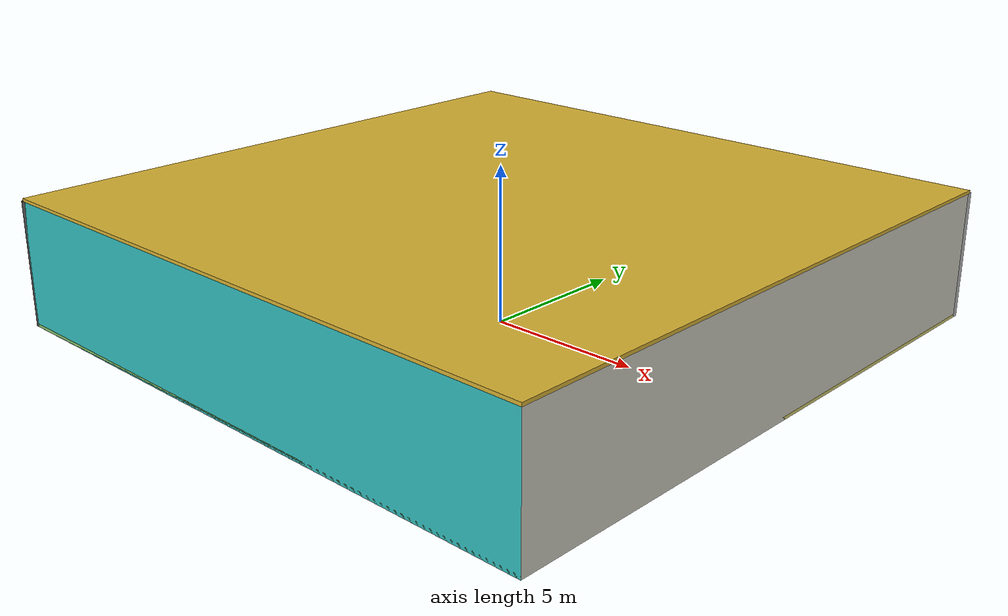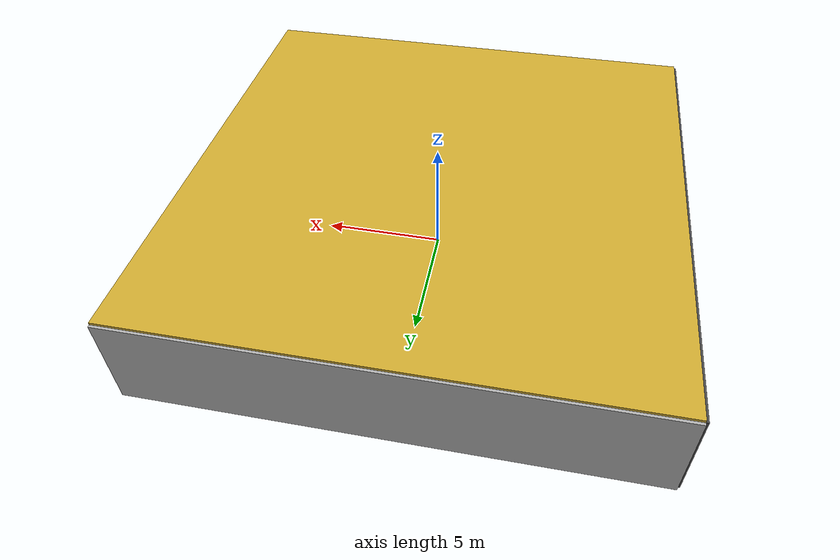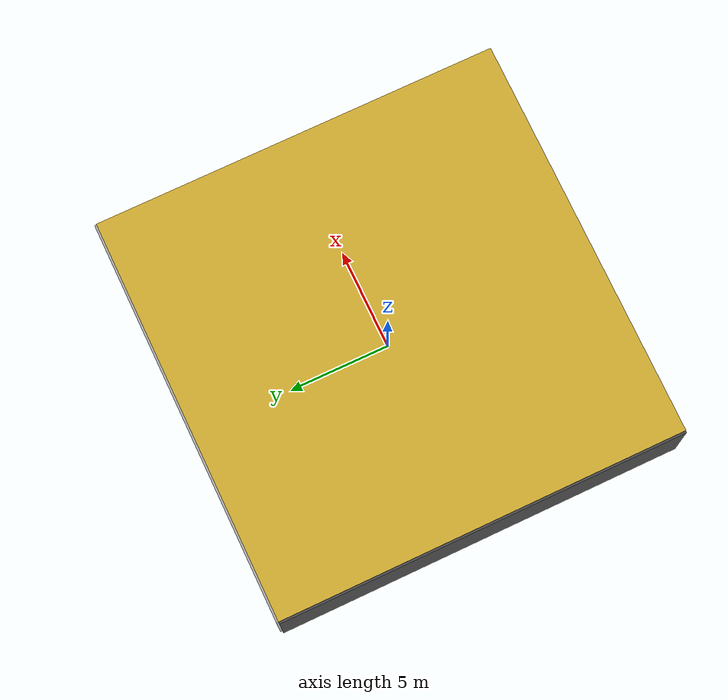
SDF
<sdf version="1.4">
 <world name="default">
  <physics type="ode">
   <max_step_size>0.001</max_step_size>
   <real_time_factor>1</real_time_factor>
   <real_time_update_rate>1000</real_time_update_rate>
   <gravity>0 0 -9.8</gravity>
  </physics>
  <scene><ambient>0.4 0.4 0.4 1</ambient><background>0.7 0.7 0.7 1</background><shadows>1</shadows></scene>
  <model name="Surrounding">
   <static>1</static>
   <link name="Ceiling">
    <collision name="Ceiling_Collision"><geometry><box><size>20 20 0.1</size></box></geometry></collision>
    <visual name="Ceiling_Visual">
     <geometry><box><size>20 20 0.1</size></box></geometry>
     <material>
      <script><uri>file://media/materials/scripts/gazebo.material</uri><name>Gazebo/Gold</name></script>
     </material>
    </visual>
    <pose>0 0 4.05 0 0 0</pose>
   </link>
   <link name="Wall_South">
    <collision name="Wall_South_Collision">
     <geometry><box><size>20 0 4</size></box></geometry>
     <pose>0 0 2 0 -0 0</pose>
    </collision>
    <visual name="Wall_South_Visual">
     <pose>0 0 2 0 -0 0</pose>
     <geometry><box><size>20 0 4</size></box></geometry>
     <material>
      <script>
       <uri>file://media/materials/scripts/gazebo.material</uri>
       <name>Gazebo/TurquoiseGlowOutline</name>
      </script>
     </material>
    </visual>
    <velocity_decay><linear>0</linear><angular>0</angular></velocity_decay>
    <pose>0 -10 0 0 -0 0</pose>
   </link>
   <link name="Wall_East">
    <collision name="Wall_21_Collision">
     <geometry><box><size>20 0 4</size></box></geometry>
     <pose>0 0 2 0 -0 0</pose>
    </collision>
    <visual name="Wall_21_Visual">
     <pose>0 0 2 0 -0 0</pose>
     <geometry><box><size>20 0 4</size></box></geometry>
     <material>
      <script><uri>file://media/materials/scripts/gazebo.material</uri><name>Gazebo/PaintedWall</name></script>
     </material>
    </visual>
    <velocity_decay><linear>0</linear><angular>0</angular></velocity_decay>
    <pose>10 0 0 0 -0 1.5708</pose>
   </link>
   <link name="Wall_North">
    <collision name="Wall_22_Collision">
     <geometry><box><size>20 0.2 4</size></box></geometry>
     <pose>0 0 2 0 -0 0</pose>
    </collision>
    <visual name="Wall_22_Visual">
     <pose>0 0 2 0 -0 0</pose>
     <geometry><box><size>20 0.2 4</size></box></geometry>
     <material>
      <script><uri>file://media/materials/scripts/gazebo.material</uri><name>Gazebo/Pioneer2Body</name></script>
     </material>
    </visual>
    <velocity_decay><linear>0</linear><angular>0</angular></velocity_decay>
    <pose>0 10 0 0 -0 0</pose>
   </link>
   <link name="Wall_West">
    <collision name="Wall_23_Collision">
     <geometry><box><size>20 0.2 4</size></box></geometry>
     <pose>0 0 2 0 -0 0</pose>
    </collision>
    <visual name="Wall_23_Visual">
     <pose>0 0 2 0 -0 0</pose>
     <geometry><box><size>20 0.2 4</size></box></geometry>
     <material>
      <script><uri>file://media/materials/scripts/gazebo.material</uri><name>Gazebo/Road</name></script>
     </material>
    </visual>
    <velocity_decay><linear>0</linear><angular>0</angular></velocity_decay>
    <pose>-10 0 0 0 0 -1.5708</pose>
   </link>
   <link name="Ground_link">
    <collision name="collision">
     <pose>0 0 .05 0 -0 0</pose>
     <geometry><box><size>20 20 0.1</size></box></geometry>
    </collision>
    <visual name="visual">
     <pose>0 0 .05 0 -0 0</pose>
     <geometry><box><size>20 20 0.1</size></box></geometry>
     <material>
      <script>
       <uri>file://media/materials/scripts/gazebo.material</uri>
       <name>Gazebo/YellowTransparent</name>
      </script>
     </material>
    </visual>
   </link>
   <static>1</static>
  </model>
  <spherical_coordinates>
   <surface_model>EARTH_WGS84</surface_model>
   <latitude_deg>0</latitude_deg>
   <longitude_deg>0</longitude_deg>
   <elevation>0</elevation>
   <heading_deg>0</heading_deg>
  </spherical_coordinates>
  <light name="lightball_0" type="diffuse">
   <diffuse>0.8 0.8 0.8 1</diffuse>
   <specular>0.2 0.2 0.2 1</specular>
   <attenuation>
    <range>100</range>
    <constant>0.7</constant>
    <linear>0.01</linear>
    <quadratic>0.001</quadratic>
   </attenuation>
   <direction>-0.5 0.1 -0.9</direction>
   <pose>-3.63973910534 -2.83543894933 3.52632167406 0 0 0</pose>
  </light>
  <light name="lightball_1" type="diffuse">
   <diffuse>0.8 0.8 0.8 1</diffuse>
   <specular>0.2 0.2 0.2 1</specular>
   <attenuation>
    <range>100</range>
    <constant>0.7</constant>
    <linear>0.01</linear>
    <quadratic>0.001</quadratic>
   </attenuation>
   <direction>-0.5 0.1 -0.9</direction>
   <pose>-3.83209020252 -9.12907542677 3.5418096449 0 0 0</pose>
  </light>
  <light name="lightball_2" type="diffuse">
   <diffuse>0.8 0.8 0.8 1</diffuse>
   <specular>0.2 0.2 0.2 1</specular>
   <attenuation>
    <range>100</range>
    <constant>0.7</constant>
    <linear>0.01</linear>
    <quadratic>0.001</quadratic>
   </attenuation>
   <direction>-0.5 0.1 -0.9</direction>
   <pose>3.74080127521 -2.80294199313 0.615619937048 0 0 0</pose>
  </light>
  <light name="lightball_3" type="diffuse">
   <diffuse>0.8 0.8 0.8 1</diffuse>
   <specular>0.2 0.2 0.2 1</specular>
   <attenuation>
    <range>100</range>
    <constant>0.7</constant>
    <linear>0.01</linear>
    <quadratic>0.001</quadratic>
   </attenuation>
   <direction>-0.5 0.1 -0.9</direction>
   <pose>6.6093424216 -9.95029756585 3.41904364885 0 0 0</pose>
  </light>
  <include><uri>model://cabinet</uri><pose>-8.56180984361 1.14183998049 0 0 0 0.368069518021</pose></include>
  <include><uri>model://table</uri><pose>-8.65634929247 5.40923916755 0 0 0 0.547489156293</pose></include>
  <include>
   <uri>model://robocup_3Dsim_goal</uri>
   <pose>-6.84163142484 7.55507264241 0 0 0 1.94409699308</pose>
  </include>
  <include><uri>model://cabinet</uri><pose>3.71490099197 -3.3025225336 0 0 0 2.20843033125</pose></include>
  <include><uri>model://cabinet</uri><pose>3.52031370447 -0.829733778325 0 0 0 2.18030621971</pose></include>
  <include><uri>model://cabinet</uri><pose>6.63844891324 5.22848024789 0 0 0 1.63818392599</pose></include>
 </world>
</sdf>

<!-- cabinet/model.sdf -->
<sdf version="1.5">
  <model name="cabinet">
    <static>true</static>
    <link name="cabinet_bottom_plate">
      <inertial>
        <pose>0 0 -1 0 0 0</pose>
        <inertia>
          <ixx>2.050000</ixx>
          <ixy>0</ixy>
          <ixz>0</ixz>
          <iyy>2.050000</iyy>
          <iyz>0</iyz>
          <izz>2.050000</izz>
        </inertia>
        <mass>25.000000</mass>
      </inertial>
      <collision name="cabinet_bottom_plate_geom">
        <pose>0 0 0.010000 0 0 0</pose>
        <geometry>
          <box>
            <size>0.450000 0.450000 0.020000</size>
          </box>
        </geometry>
      </collision>
      <visual name="cabinet_bottom_plate_geom_visual">
        <pose>0 0 0.010000 0 0 0</pose>
        <geometry>
          <box>
            <size>0.450000 0.450000 0.020000</size>
          </box>
        </geometry>
        <material>
          <script>
            <uri>model://media/materials/scripts/gazebo.material</uri>
            <name>Gazebo/Wood</name>
          </script>
        </material>
      </visual>
      <collision name="cabinet_bottom_plate_geom_cabinet_back_plate">
        <pose>0.235000 0 0.510000 0 0 0</pose>
        <geometry>
          <box>
            <size>0.020000 0.450000 1.020000</size>
          </box>
        </geometry>
      </collision>
      <visual name="cabinet_bottom_plate_geom_cabinet_back_plate_visual">
        <pose>0.235000 0 0.510000 0 0 0</pose>
        <geometry>
          <box>
            <size>0.020000 0.450000 1.020000</size>
          </box>
        </geometry>
        <material>
          <script>
            <uri>model://media/materials/scripts/gazebo.material</uri>
            <name>Gazebo/Wood</name>
          </script>
        </material>
      </visual>
      <collision name="cabinet_bottom_plate_geom_cabinet_left_plate">
        <pose>0 0.235000 0.510000 0 0 0</pose>
        <geometry>
          <box>
            <size>0.450000 0.020000 1.020000</size>
          </box>
        </geometry>
      </collision>
      <visual name="cabinet_bottom_plate_geom_cabinet_left_plate_visual">
        <pose>0 0.235000 0.510000 0 0 0</pose>
        <geometry>
          <box>
            <size>0.450000 0.020000 1.020000</size>
          </box>
        </geometry>
        <material>
          <script>
            <uri>model://media/materials/scripts/gazebo.material</uri>
            <name>Gazebo/Wood</name>
          </script>
        </material>
      </visual>
      <collision name="cabinet_bottom_plate_geom_cabinet_middle_plate">
        <pose>0 0 0.510000 0 0 0</pose>
        <geometry>
          <box>
            <size>0.450000 0.450000 0.020000</size>
          </box>
        </geometry>
      </collision>
      <visual name="cabinet_bottom_plate_geom_cabinet_middle_plate_visual">
        <pose>0 0 0.510000 0 0 0</pose>
        <geometry>
          <box>
            <size>0.450000 0.450000 0.020000</size>
          </box>
        </geometry>
        <material>
          <script>
            <uri>model://media/materials/scripts/gazebo.material</uri>
            <name>Gazebo/Wood</name>
          </script>
        </material>
      </visual>
      <collision name="cabinet_bottom_plate_geom_cabinet_right_plate">
        <pose>0 -0.235000 0.510000 0 0 0</pose>
        <geometry>
          <box>
            <size>0.450000 0.020000 1.020000</size>
          </box>
        </geometry>
      </collision>
      <visual name="cabinet_bottom_plate_geom_cabinet_right_plate_visual">
        <pose>0 -0.235000 0.510000 0 0 0</pose>
        <geometry>
          <box>
            <size>0.450000 0.020000 1.020000</size>
          </box>
        </geometry>
        <material>
          <script>
            <uri>model://media/materials/scripts/gazebo.material</uri>
            <name>Gazebo/Wood</name>
          </script>
        </material>
      </visual>
      <collision name="cabinet_bottom_plate_geom_cabinet_top_plate">
        <pose>0 0 1.010000 0 0 0</pose>
        <geometry>
          <box>
            <size>0.450000 0.450000 0.020000</size>
          </box>
        </geometry>
      </collision>
      <visual name="cabinet_bottom_plate_geom_cabinet_top_plate_visual">
        <pose>0 0 1.010000 0 0 0</pose>
        <geometry>
          <box>
            <size>0.450000 0.450000 0.020000</size>
          </box>
        </geometry>
        <material>
          <script>
            <uri>model://media/materials/scripts/gazebo.material</uri>
            <name>Gazebo/Wood</name>
          </script>
        </material>
      </visual>
    </link>
  </model>
</sdf>

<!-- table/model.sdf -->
<sdf version="1.5">
  <model name="table">
    <static>true</static>
    <link name="link">
      <collision name="surface">
        <pose>0 0 1.0 0 0 0</pose>
        <geometry>
          <box>
            <size>1.5 0.8 0.03</size>
          </box>
        </geometry>
        <surface>
          <friction>
            <ode>
              <mu>0.6</mu>
              <mu2>0.6</mu2>
            </ode>
          </friction>
        </surface>
      </collision>
      <visual name="visual1">
        <pose>0 0 1.0 0 0 0</pose>
        <geometry>
          <box>
            <size>1.5 0.8 0.03</size>
          </box>
        </geometry>
        <material>
          <script>
            <uri>model://media/materials/scripts/gazebo.material</uri>
            <name>Gazebo/Wood</name>
          </script>
        </material>
      </visual>
      <collision name="front_left_leg">
        <pose>0.68 0.38 0.5 0 0 0</pose>
        <geometry>
          <cylinder>
            <radius>0.02</radius>
            <length>1.0</length>
          </cylinder>
        </geometry>
      </collision>
      <visual name="front_left_leg">
        <pose>0.68 0.38 0.5 0 0 0</pose>
        <geometry>
          <cylinder>
            <radius>0.02</radius>
            <length>1.0</length>
          </cylinder>
        </geometry>
        <material>
          <script>
            <uri>model://media/materials/scripts/gazebo.material</uri>
            <name>Gazebo/Grey</name>
          </script>
        </material>
      </visual>
      <collision name="front_right_leg">
        <pose>0.68 -0.38 0.5 0 0 0</pose>
        <geometry>
          <cylinder>
            <radius>0.02</radius>
            <length>1.0</length>
          </cylinder>
        </geometry>
      </collision>
      <visual name="front_right_leg">
        <pose>0.68 -0.38 0.5 0 0 0</pose>
        <geometry>
          <cylinder>
            <radius>0.02</radius>
            <length>1.0</length>
          </cylinder>
        </geometry>
        <material>
          <script>
            <uri>model://media/materials/scripts/gazebo.material</uri>
            <name>Gazebo/Grey</name>
          </script>
        </material>
      </visual>
      <collision name="back_right_leg">
        <pose>-0.68 -0.38 0.5 0 0 0</pose>
        <geometry>
          <cylinder>
            <radius>0.02</radius>
            <length>1.0</length>
          </cylinder>
        </geometry>
      </collision>
      <visual name="back_right_leg">
        <pose>-0.68 -0.38 0.5 0 0 0</pose>
        <geometry>
          <cylinder>
            <radius>0.02</radius>
            <length>1.0</length>
          </cylinder>
        </geometry>
        <material>
          <script>
            <uri>model://media/materials/scripts/gazebo.material</uri>
            <name>Gazebo/Grey</name>
          </script>
        </material>
      </visual>
      <collision name="back_left_leg">
        <pose>-0.68 0.38 0.5 0 0 0</pose>
        <geometry>
          <cylinder>
            <radius>0.02</radius>
            <length>1.0</length>
          </cylinder>
        </geometry>
      </collision>
      <visual name="back_left_leg">
        <pose>-0.68 0.38 0.5 0 0 0</pose>
        <geometry>
          <cylinder>
            <radius>0.02</radius>
            <length>1.0</length>
          </cylinder>
        </geometry>
        <material>
          <script>
            <uri>model://media/materials/scripts/gazebo.material</uri>
            <name>Gazebo/Grey</name>
          </script>
        </material>
      </visual>
    </link>
  </model>
</sdf>

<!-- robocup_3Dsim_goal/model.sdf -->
<sdf version="1.5">
  <model name="robocup_3d_goal">
    <static>true</static>
    <link name="left_post">
      <pose>0 1.05 0.45 0 0 0</pose>
      <collision name="collision">
        <geometry>
          <cylinder>
            <radius>0.05</radius>
            <length>0.9</length>
          </cylinder>
        </geometry>
      </collision>
      <visual name="visual">
        <geometry>
          <cylinder>
            <radius>0.05</radius>
            <length>0.9</length>
          </cylinder>
        </geometry>
        <material>
          <script>
            <uri>file://media/materials/scripts/gazebo.material</uri>
            <name>Gazebo/ZincYellow</name>
          </script>
        </material>
      </visual>
    </link>
    <link name="left_support_horiz_lower">
      <pose>0.30 1.05 0.01 0 0 0</pose>
      <collision name="collision">
        <geometry>
          <box>
            <size>0.50 0.02 0.02</size>
          </box>
        </geometry>
      </collision>
      <visual name="visual">
        <geometry>
          <box>
            <size>0.50 0.02 0.02</size>
          </box>
        </geometry>
        <material>
          <script>
            <uri>file://media/materials/scripts/gazebo.material</uri>
            <name>Gazebo/White</name>
          </script>
        </material>
      </visual>
    </link>
    <link name="left_support_horiz_upper">
      <pose>0.30 1.05 0.79 0 0 0</pose>
      <collision name="collision">
        <geometry>
          <box>
            <size>0.50 0.02 0.02</size>
          </box>
        </geometry>
      </collision>
      <visual name="visual">
        <geometry>
          <box>
            <size>0.50 0.02 0.02</size>
          </box>
        </geometry>
        <material>
          <script>
            <uri>file://media/materials/scripts/gazebo.material</uri>
            <name>Gazebo/White</name>
          </script>
        </material>
      </visual>
    </link>
    <link name="left_support_vertical">
      <pose>0.56 1.05 0.4 0 1.5708 0</pose>
      <collision name="collision">
        <geometry>
          <box>
            <size>0.80 0.02 0.02</size>
          </box>
        </geometry>
      </collision>
      <visual name="visual">
        <geometry>
          <box>
            <size>0.80 0.02 0.02</size>
          </box>
        </geometry>
        <material>
          <script>
            <uri>file://media/materials/scripts/gazebo.material</uri>
            <name>Gazebo/White</name>
          </script>
        </material>
      </visual>
    </link>
    <link name="right_support_horiz_lower">
      <pose>0.30 -1.05 0.01 0 0 0</pose>
      <collision name="collision">
        <geometry>
          <box>
            <size>0.50 0.02 0.02</size>
          </box>
        </geometry>
      </collision>
      <visual name="visual">
        <geometry>
          <box>
            <size>0.50 0.02 0.02</size>
          </box>
        </geometry>
        <material>
          <script>
            <uri>file://media/materials/scripts/gazebo.material</uri>
            <name>Gazebo/White</name>
          </script>
        </material>
      </visual>
    </link>
    <link name="right_support_horiz_upper">
      <pose>0.30 -1.05 0.79 0 0 0</pose>
      <collision name="collision">
        <geometry>
          <box>
            <size>0.50 0.02 0.02</size>
          </box>
        </geometry>
      </collision>
      <visual name="visual">
        <geometry>
          <box>
            <size>0.50 0.02 0.02</size>
          </box>
        </geometry>
        <material>
          <script>
            <uri>file://media/materials/scripts/gazebo.material</uri>
            <name>Gazebo/White</name>
          </script>
        </material>
      </visual>
    </link>
    <link name="right_support_vertical">
      <pose>0.56 -1.05 0.4 0 1.5708 0</pose>
      <collision name="collision">
        <geometry>
          <box>
            <size>0.80 0.02 0.02</size>
          </box>
        </geometry>
      </collision>
      <visual name="visual">
        <geometry>
          <box>
            <size>0.80 0.02 0.02</size>
          </box>
        </geometry>
        <material>
          <script>
            <uri>file://media/materials/scripts/gazebo.material</uri>
            <name>Gazebo/White</name>
          </script>
        </material>
      </visual>
    </link>
    <link name="center_support_horiz_lower">
      <pose>0.56 0 0.01 0 1.5708 0</pose>
      <collision name="collision">
        <geometry>
          <box>
            <size>0.02 2.08 0.02</size>
          </box>
        </geometry>
      </collision>
      <visual name="visual">
        <geometry>
          <box>
            <size>0.02 2.08 0.02</size>
          </box>
        </geometry>
        <material>
          <script>
            <uri>file://media/materials/scripts/gazebo.material</uri>
            <name>Gazebo/White</name>
          </script>
        </material>
      </visual>
    </link>
    <link name="center_support_horiz_upper">
      <pose>0.56 0 0.79 0 1.5708 0</pose>
      <collision name="collision">
        <geometry>
          <box>
            <size>0.02 2.08 0.02</size>
          </box>
        </geometry>
      </collision>
      <visual name="visual">
        <geometry>
          <box>
            <size>0.02 2.08 0.02</size>
          </box>
        </geometry>
        <material>
          <script>
            <uri>file://media/materials/scripts/gazebo.material</uri>
            <name>Gazebo/White</name>
          </script>
        </material>
      </visual>
    </link>
    <link name="right_post">
      <pose>0 -1.05 0.45 0 0 0</pose>
      <collision name="collision">
        <geometry>
          <cylinder>
            <radius>0.05</radius>
            <length>0.9</length>
          </cylinder>
        </geometry>
      </collision>
      <visual name="visual">
        <geometry>
          <cylinder>
            <radius>0.05</radius>
            <length>0.9</length>
          </cylinder>
        </geometry>
        <material>
          <script>
            <uri>file://media/materials/scripts/gazebo.material</uri>
            <name>Gazebo/ZincYellow</name>
          </script>
        </material>
      </visual>
    </link>
    <link name="crossbar">
      <pose>0 0 0.85 1.57 1.57 0</pose>
      <collision name="collision">
        <geometry>
          <cylinder>
            <radius>0.05</radius>
            <length>2.0</length>
          </cylinder>
        </geometry>
      </collision>
      <visual name="visual">
        <geometry>
          <cylinder>
            <radius>0.05</radius>
            <length>2.0</length>
          </cylinder>
        </geometry>
        <material>
          <script>
            <uri>file://media/materials/scripts/gazebo.material</uri>
            <name>Gazebo/ZincYellow</name>
          </script>
        </material>
      </visual>
    </link>
    <link name="center_net">
      <pose>0.56 0 0.40 0 0 0</pose>
      <collision name="collision">
        <geometry>
          <box>
            <size>0.01 2.1 0.80</size>
          </box>
        </geometry>
      </collision>
      <visual name="visual">
        <geometry>
          <box>
            <size>0.01 2.1 0.80</size>
          </box>
        </geometry>
        <material>
          <script>
            <uri>model://../model_source/models/robocup09_spl_field/materials/scripts/</uri>
            <uri>model://../model_source/models/robocup09_spl_field/materials/textures/</uri>
            <name>RoboCup/Net</name>
          </script>
        </material>
      </visual>
    </link>
    <link name="left_net">
      <pose>0.30 1.05 0.40 0 0 0</pose>
      <collision name="collision">
        <geometry>
          <box>
            <size>0.50 0.01 0.76</size>
          </box>
        </geometry>
      </collision>
      <visual name="visual">
        <geometry>
          <box>
            <size>0.50 0.01 0.76</size>
          </box>
        </geometry>
        <material>
          <script>
            <uri>model://../model_source/models/robocup09_spl_field/materials/scripts/</uri>
            <uri>model://../model_source/models/robocup09_spl_field/materials/textures/</uri>
            <name>RoboCup/Net</name>
          </script>
        </material>
      </visual>
    </link>
    <link name="right_net">
      <pose>0.30 -1.05 0.40 0 0 0</pose>
      <collision name="collision">
        <geometry>
          <box>
            <size>0.50 0.01 0.76</size>
          </box>
        </geometry>
      </collision>
      <visual name="visual">
        <geometry>
          <box>
            <size>0.50 0.01 0.76</size>
          </box>
        </geometry>
        <material>
          <script>
            <uri>model://../model_source/models/robocup09_spl_field/materials/scripts/</uri>
            <uri>model://../model_source/models/robocup09_spl_field/materials/textures/</uri>
            <name>RoboCup/Net</name>
          </script>
        </material>
      </visual>
    </link>
  </model>
</sdf>
